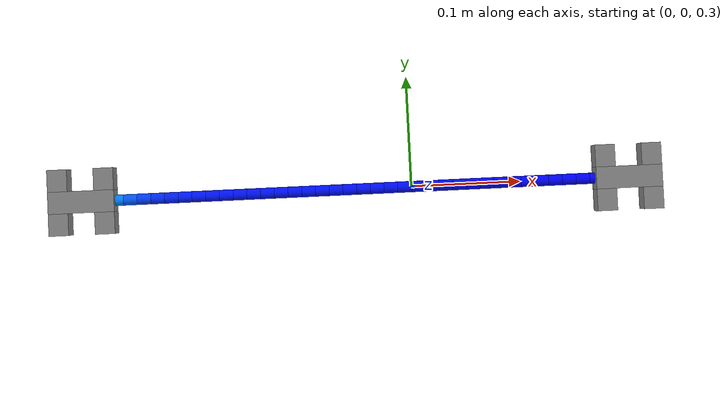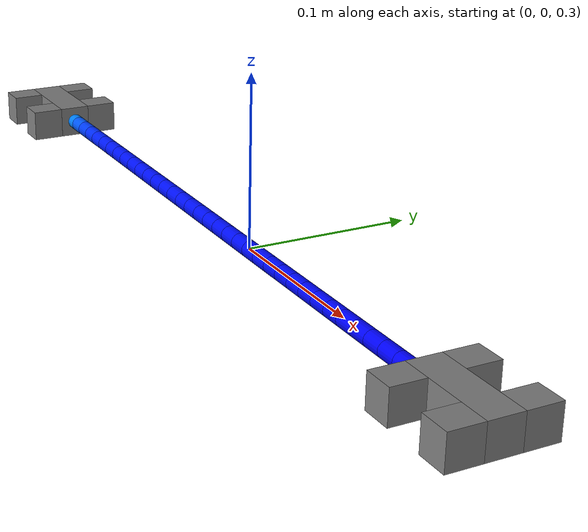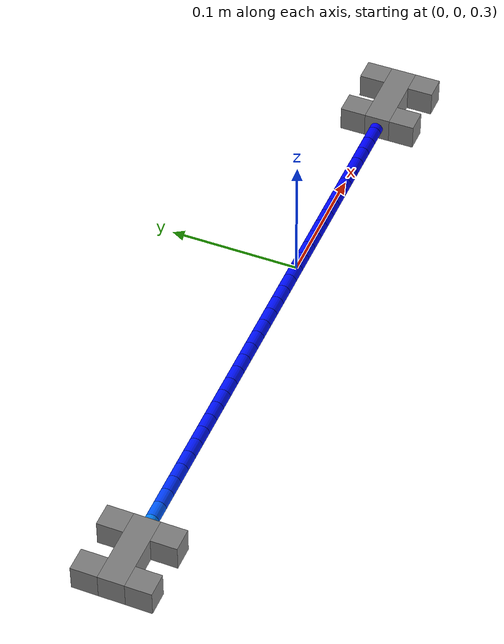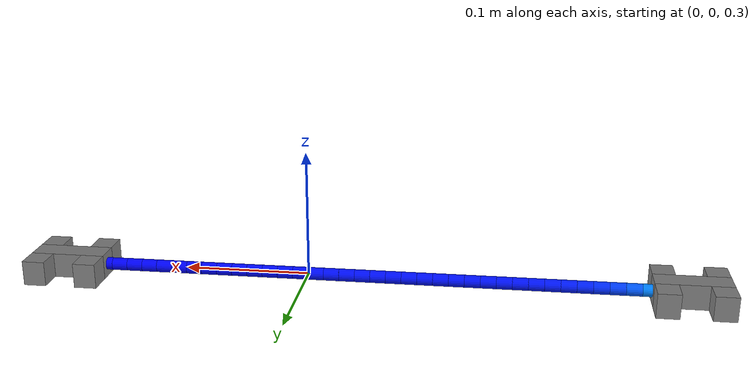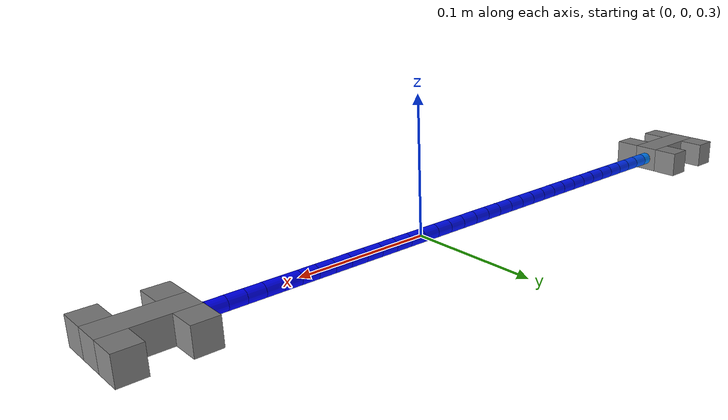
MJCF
<!--        &lt;!&ndash;Units are in Pa (SI)&ndash;&gt;-->

<mujoco model="Cable">
  <compiler angle="radian"/>
  <option impratio="5" gravity="0 0 0">
  </option>
  <size memory="200M"/>
  <statistic extent="1" center="0 0 0.3"/>
  <extension>
    <plugin plugin="mujoco.elasticity.cable">
      <instance name="composite">
        <config key="twist" value="2e4"/>
        <config key="bend" value="4e4"/>
        <config key="vmax" value="0.1"/>
      </instance>
    </plugin>
  </extension>
  <custom>
    <text name="composite_" data="rope_"/>
  </custom>
  <worldbody>
    <body name="slider1" pos="-0.3 0 0.3">
      <geom size="0.03 0.01 0.01" type="box" condim="3"/>
      <geom size="0.009 0.01 0.01" type="box" condim="3" pos="0.021 0.02 0"/>
      <geom size="0.009 0.01 0.01" type="box" condim="3" pos="-0.021 0.02 0"/>
      <geom size="0.009 0.01 0.01" type="box" condim="3" pos="0.021 -0.02 0"/>
      <geom size="0.009 0.01 0.01" type="box" condim="3" pos="-0.021 -0.02 0"/>
    </body>
    <body name="B_first" pos="-0.3 0 0.3">
      <joint name="J_first" pos="0 0 0" type="ball" group="3" damping="0.015"/>
      <geom name="G0" size="0.005 0.00625" pos="0.00625 0 0" quat="0.707107 0 -0.707107 0" type="capsule" condim="1" rgba="0 0.705783 1 1"/>
      <site name="S_first" pos="0 0 0" group="3"/>
      <plugin instance="composite"/>
      <body name="B_1" pos="0.0125 0 0">
        <joint name="J_1" pos="0 0 0" type="ball" group="3" damping="0.015"/>
        <geom name="G1" size="0.005 0.00625" pos="0.00625 0 0" quat="0.707107 0 -0.707107 0" type="capsule" condim="1" rgba="0 0.655989 1 1"/>
        <plugin instance="composite"/>
        <body name="B_2" pos="0.0125 0 0">
          <joint name="J_2" pos="0 0 0" type="ball" group="3" damping="0.015"/>
          <geom name="G2" size="0.005 0.00625" pos="0.00625 0 0" quat="0.707107 0 -0.707107 0" type="capsule" condim="1" rgba="0 0.512368 1 1"/>
          <plugin instance="composite"/>
          <body name="B_3" pos="0.0125 0 0">
            <joint name="J_3" pos="0 0 0" type="ball" group="3" damping="0.015"/>
            <geom name="G3" size="0.005 0.00625" pos="0.00625 0 0" quat="0.707107 0 -0.707107 0" type="capsule" condim="1" rgba="0 0.354071 1 1"/>
            <plugin instance="composite"/>
            <body name="B_4" pos="0.0125 0 0">
              <joint name="J_4" pos="0 0 0" type="ball" group="3" damping="0.015"/>
              <geom name="G4" size="0.005 0.00625" pos="0.00625 0 0" quat="0.707107 0 -0.707107 0" type="capsule" condim="1" rgba="0 0.247016 1 1"/>
              <plugin instance="composite"/>
              <body name="B_5" pos="0.0125 0 0">
                <joint name="J_5" pos="0 0 0" type="ball" group="3" damping="0.015"/>
                <geom name="G5" size="0.005 0.00625" pos="0.00625 0 0" quat="0.707107 0 -0.707107 0" type="capsule" condim="1" rgba="0 0.177048 1 1"/>
                <plugin instance="composite"/>
                <body name="B_6" pos="0.0125 0 0">
                  <joint name="J_6" pos="0 0 0" type="ball" group="3" damping="0.015"/>
                  <geom name="G6" size="0.005 0.00625" pos="0.00625 0 0" quat="0.707107 0 -0.707107 0" type="capsule" condim="1" rgba="0 0.132466 1 1"/>
                  <plugin instance="composite"/>
                  <body name="B_7" pos="0.0125 0 0">
                    <joint name="J_7" pos="0 0 0" type="ball" group="3" damping="0.015"/>
                    <geom name="G7" size="0.005 0.00625" pos="0.00625 0 0" quat="0.707107 0 -0.707107 0" type="capsule" condim="1" rgba="0 0.10475 1 1"/>
                    <plugin instance="composite"/>
                    <body name="B_8" pos="0.0125 0 0">
                      <joint name="J_8" pos="0 0 0" type="ball" group="3" damping="0.015"/>
                      <geom name="G8" size="0.005 0.00625" pos="0.00625 0 0" quat="0.707107 0 -0.707107 0" type="capsule" condim="1" rgba="0 0.0880006 1 1"/>
                      <plugin instance="composite"/>
                      <body name="B_9" pos="0.0125 0 0">
                        <joint name="J_9" pos="0 0 0" type="ball" group="3" damping="0.015"/>
                        <geom name="G9" size="0.005 0.00625" pos="0.00625 0 0" quat="0.707107 0 -0.707107 0" type="capsule" condim="1" rgba="0 0.0782314 1 1"/>
                        <plugin instance="composite"/>
                        <body name="B_10" pos="0.0125 0 0">
                          <joint name="J_10" pos="0 0 0" type="ball" group="3" damping="0.015"/>
                          <geom name="G10" size="0.005 0.00625" pos="0.00625 0 0" quat="0.707107 0 -0.707107 0" type="capsule" condim="1" rgba="0 0.0727861 1 1"/>
                          <plugin instance="composite"/>
                          <body name="B_11" pos="0.0125 0 0">
                            <joint name="J_11" pos="0 0 0" type="ball" group="3" damping="0.015"/>
                            <geom name="G11" size="0.005 0.00625" pos="0.00625 0 0" quat="0.707107 0 -0.707107 0" type="capsule" condim="1" rgba="0 0.0699149 1 1"/>
                            <plugin instance="composite"/>
                            <body name="B_12" pos="0.0125 0 0">
                              <joint name="J_12" pos="0 0 0" type="ball" group="3" damping="0.015"/>
                              <geom name="G12" size="0.005 0.00624999" pos="0.00624999 0 0" quat="0.707107 0 -0.707107 0" type="capsule" condim="1" rgba="0 0.0684785 1 1"/>
                              <plugin instance="composite"/>
                              <body name="B_13" pos="0.0125 0 0">
                                <joint name="J_13" pos="0 0 0" type="ball" group="3" damping="0.015"/>
                                <geom name="G13" size="0.005 0.00625" pos="0.00625 0 0" quat="0.707107 0 -0.707107 0" type="capsule" condim="1" rgba="0 0.0677457 1 1"/>
                                <plugin instance="composite"/>
                                <body name="B_14" pos="0.0125 0 0">
                                  <joint name="J_14" pos="0 0 0" type="ball" group="3" damping="0.015"/>
                                  <geom name="G14" size="0.005 0.00625" pos="0.00625 0 0" quat="0.707107 0 -0.707107 0" type="capsule" condim="1" rgba="0 0.0672557 1 1"/>
                                  <plugin instance="composite"/>
                                  <body name="B_15" pos="0.0125 0 0">
                                    <joint name="J_15" pos="0 0 0" type="ball" group="3" damping="0.015"/>
                                    <geom name="G15" size="0.005 0.00625" pos="0.00625 0 0" quat="0.707107 0 -0.707107 0" type="capsule" condim="1" rgba="0 0.0667259 1 1"/>
                                    <plugin instance="composite"/>
                                    <body name="B_16" pos="0.0125 0 0">
                                      <joint name="J_16" pos="0 0 0" type="ball" group="3" damping="0.015"/>
                                      <geom name="G16" size="0.005 0.00625" pos="0.00625 0 0" quat="0.707107 0 -0.707107 0" type="capsule" condim="1" rgba="0 0.0659899 1 1"/>
                                      <plugin instance="composite"/>
                                      <body name="B_17" pos="0.0125 0 0">
                                        <joint name="J_17" pos="0 0 0" type="ball" group="3" damping="0.015"/>
                                        <geom name="G17" size="0.005 0.00624999" pos="0.00624999 0 0" quat="0.707107 0 -0.707107 0" type="capsule" condim="1" rgba="0 0.0649561 1 1"/>
                                        <plugin instance="composite"/>
                                        <body name="B_18" pos="0.0125 0 0">
                                          <joint name="J_18" pos="0 0 0" type="ball" group="3" damping="0.015"/>
                                          <geom name="G18" size="0.005 0.00625" pos="0.00625 0 0" quat="0.707107 0 -0.707107 0" type="capsule" condim="1" rgba="0 0.0635808 1 1"/>
                                          <plugin instance="composite"/>
                                          <body name="B_19" pos="0.0125 0 0">
                                            <joint name="J_19" pos="0 0 0" type="ball" group="3" damping="0.015"/>
                                            <geom name="G19" size="0.005 0.00625" pos="0.00625 0 0" quat="0.707107 0 -0.707107 0" type="capsule" condim="1" rgba="0 0.0618502 1 1"/>
                                            <plugin instance="composite"/>
                                            <body name="B_20" pos="0.0125 0 0">
                                              <joint name="J_20" pos="0 0 0" type="ball" group="3" damping="0.015"/>
                                              <geom name="G20" size="0.005 0.00624999" pos="0.00624999 0 0" quat="0.707107 0 -0.707107 0" type="capsule" condim="1" rgba="0 0.0597683 1 1"/>
                                              <plugin instance="composite"/>
                                              <body name="B_21" pos="0.0125 0 0">
                                                <joint name="J_21" pos="0 0 0" type="ball" group="3" damping="0.015"/>
                                                <geom name="G21" size="0.005 0.00625001" pos="0.00625001 0 0" quat="0.707107 0 -0.707107 0" type="capsule" condim="1" rgba="0 0.0573504 1 1"/>
                                                <plugin instance="composite"/>
                                                <body name="B_22" pos="0.0125 0 0">
                                                  <joint name="J_22" pos="0 0 0" type="ball" group="3" damping="0.015"/>
                                                  <geom name="G22" size="0.005 0.00624999" pos="0.00624999 0 0" quat="0.707107 0 -0.707107 0" type="capsule" condim="1" rgba="0 0.0546176 1 1"/>
                                                  <plugin instance="composite"/>
                                                  <body name="B_23" pos="0.0125 0 0">
                                                    <joint name="J_23" pos="0 0 0" type="ball" group="3" damping="0.015"/>
                                                    <geom name="G23" size="0.005 0.00625001" pos="0.00625001 0 0" quat="0.707107 0 -0.707107 0" type="capsule" condim="1" rgba="0 0.0515946 1 1"/>
                                                    <plugin instance="composite"/>
                                                    <body name="B_24" pos="0.0125 0 0">
                                                      <joint name="J_24" pos="0 0 0" type="ball" group="3" damping="0.015"/>
                                                      <geom name="G24" size="0.005 0.00624999" pos="0.00624999 0 0" quat="0.707107 0 -0.707107 0" type="capsule" condim="1" rgba="0 0.0483087 1 1"/>
                                                      <plugin instance="composite"/>
                                                      <body name="B_25" pos="0.0125 0 0">
                                                        <joint name="J_25" pos="0 0 0" type="ball" group="3" damping="0.015"/>
                                                        <geom name="G25" size="0.005 0.00624999" pos="0.00624999 0 0" quat="0.707107 0 -0.707107 0" type="capsule" condim="1" rgba="0 0.0447891 1 1"/>
                                                        <plugin instance="composite"/>
                                                        <body name="B_26" pos="0.0125 0 0">
                                                          <joint name="J_26" pos="0 0 0" type="ball" group="3" damping="0.015"/>
                                                          <geom name="G26" size="0.005 0.00625001" pos="0.00625001 0 0" quat="0.707107 0 -0.707107 0" type="capsule" condim="1" rgba="0 0.0410685 1 1"/>
                                                          <plugin instance="composite"/>
                                                          <body name="B_27" pos="0.0125 0 0">
                                                            <joint name="J_27" pos="0 0 0" type="ball" group="3" damping="0.015"/>
                                                            <geom name="G27" size="0.005 0.00624999" pos="0.00624999 0 0" quat="0.707107 0 -0.707107 0" type="capsule" condim="1" rgba="0 0.0371831 1 1"/>
                                                            <plugin instance="composite"/>
                                                            <body name="B_28" pos="0.0125 0 0">
                                                              <joint name="J_28" pos="0 0 0" type="ball" group="3" damping="0.015"/>
                                                              <geom name="G28" size="0.005 0.00625001" pos="0.00625001 0 0" quat="0.707107 0 -0.707107 0" type="capsule" condim="1" rgba="0 0.033175 1 1"/>
                                                              <plugin instance="composite"/>
                                                              <body name="B_29" pos="0.0125 0 0">
                                                                <joint name="J_29" pos="0 0 0" type="ball" group="3" damping="0.015"/>
                                                                <geom name="G29" size="0.005 0.00624999" pos="0.00624999 0 0" quat="0.707107 0 -0.707107 0" type="capsule" condim="1" rgba="0 0.0290933 1 1"/>
                                                                <plugin instance="composite"/>
                                                                <body name="B_30" pos="0.0125 0 0">
                                                                  <joint name="J_30" pos="0 0 0" type="ball" group="3" damping="0.015"/>
                                                                  <geom name="G30" size="0.005 0.00624999" pos="0.00624999 0 0" quat="0.707107 0 -0.707107 0" type="capsule" condim="1" rgba="0 0.024995 1 1"/>
                                                                  <plugin instance="composite"/>
                                                                  <body name="B_31" pos="0.0125 0 0">
                                                                    <joint name="J_31" pos="0 0 0" type="ball" group="3" damping="0.015"/>
                                                                    <geom name="G31" size="0.005 0.00625001" pos="0.00625001 0 0" quat="0.707107 0 -0.707107 0" type="capsule" condim="1" rgba="0 0.0209467 1 1"/>
                                                                    <plugin instance="composite"/>
                                                                    <body name="B_32" pos="0.0125 0 0">
                                                                      <joint name="J_32" pos="0 0 0" type="ball" group="3" damping="0.015"/>
                                                                      <geom name="G32" size="0.005 0.00624999" pos="0.00624999 0 0" quat="0.707107 0 -0.707107 0" type="capsule" condim="1" rgba="0 0.0170235 1 1"/>
                                                                      <plugin instance="composite"/>
                                                                      <body name="B_33" pos="0.0125 0 0">
                                                                        <joint name="J_33" pos="0 0 0" type="ball" group="3" damping="0.015"/>
                                                                        <geom name="G33" size="0.005 0.00625001" pos="0.00625001 0 0" quat="0.707107 0 -0.707107 0" type="capsule" condim="1" rgba="0 0.0133084 1 1"/>
                                                                        <plugin instance="composite"/>
                                                                        <body name="B_34" pos="0.0125 0 0">
                                                                          <joint name="J_34" pos="0 0 0" type="ball" group="3" damping="0.015"/>
                                                                          <geom name="G34" size="0.005 0.00624999" pos="0.00624999 0 0" quat="0.707107 0 -0.707107 0" type="capsule" condim="1" rgba="0 0.00988954 1 1"/>
                                                                          <plugin instance="composite"/>
                                                                          <body name="B_35" pos="0.0125 0 0">
                                                                            <joint name="J_35" pos="0 0 0" type="ball" group="3" damping="0.015"/>
                                                                            <geom name="G35" size="0.005 0.00624999" pos="0.00624999 0 0" quat="0.707107 0 -0.707107 0" type="capsule" condim="1" rgba="0 0.00685654 1 1"/>
                                                                            <plugin instance="composite"/>
                                                                            <body name="B_36" pos="0.0125 0 0">
                                                                              <joint name="J_36" pos="0 0 0" type="ball" group="3" damping="0.015"/>
                                                                              <geom name="G36" size="0.005 0.00625001" pos="0.00625001 0 0" quat="0.707107 0 -0.707107 0" type="capsule" condim="1" rgba="0 0.00429628 1 1"/>
                                                                              <plugin instance="composite"/>
                                                                              <body name="B_37" pos="0.0125 0 0">
                                                                                <joint name="J_37" pos="0 0 0" type="ball" group="3" damping="0.015"/>
                                                                                <geom name="G37" size="0.005 0.00624999" pos="0.00624999 0 0" quat="0.707107 0 -0.707107 0" type="capsule" condim="1" rgba="0 0.00228791 1 1"/>
                                                                                <plugin instance="composite"/>
                                                                                <body name="B_38" pos="0.0125 0 0">
                                                                                  <joint name="J_38" pos="0 0 0" type="ball" group="3" damping="0.015"/>
                                                                                  <geom name="G38" size="0.005 0.00625001" pos="0.00625001 0 0" quat="0.707107 0 -0.707107 0" type="capsule" condim="1" rgba="0 0.000898957 1 1"/>
                                                                                  <plugin instance="composite"/>
                                                                                  <body name="B_last" pos="0.0125 0 0">
                                                                                    <joint name="J_last" pos="0 0 0" type="ball" group="3" damping="0.015"/>
                                                                                    <geom name="G39" size="0.005 0.00624999" pos="0.00624999 0 0" quat="0.707107 0 -0.707107 0" type="capsule" condim="1" rgba="0 0.000366955 1 1"/>
                                                                                    <site name="S_last" pos="0.0125 0 0" group="3"/>
                                                                                    <plugin instance="composite"/>
                                                                                    <body name="slider2" pos="0.01 0 0">
                                                                                      <geom size="0.03 0.01 0.01" type="box" condim="3"/>
                                                                                      <geom size="0.009 0.01 0.01" type="box" condim="3" pos="0.021 0.02 0"/>
                                                                                      <geom size="0.009 0.01 0.01" type="box" condim="3" pos="-0.021 0.02 0"/>
                                                                                      <geom size="0.009 0.01 0.01" type="box" condim="3" pos="0.021 -0.02 0"/>
                                                                                      <geom size="0.009 0.01 0.01" type="box" condim="3" pos="-0.021 -0.02 0"/>
                                                                                    </body>
                                                                                  </body>
                                                                                </body>
                                                                              </body>
                                                                            </body>
                                                                          </body>
                                                                        </body>
                                                                      </body>
                                                                    </body>
                                                                  </body>
                                                                </body>
                                                              </body>
                                                            </body>
                                                          </body>
                                                        </body>
                                                      </body>
                                                    </body>
                                                  </body>
                                                </body>
                                              </body>
                                            </body>
                                          </body>
                                        </body>
                                      </body>
                                    </body>
                                  </body>
                                </body>
                              </body>
                            </body>
                          </body>
                        </body>
                      </body>
                    </body>
                  </body>
                </body>
              </body>
            </body>
          </body>
        </body>
      </body>
    </body>
  </worldbody>
  <contact>
    <exclude body1="B_first" body2="slider1"/>
    <exclude body1="B_first" body2="B_1"/>
    <exclude body1="B_1" body2="B_2"/>
    <exclude body1="B_2" body2="B_3"/>
    <exclude body1="B_3" body2="B_4"/>
    <exclude body1="B_4" body2="B_5"/>
    <exclude body1="B_5" body2="B_6"/>
    <exclude body1="B_6" body2="B_7"/>
    <exclude body1="B_7" body2="B_8"/>
    <exclude body1="B_8" body2="B_9"/>
    <exclude body1="B_9" body2="B_10"/>
    <exclude body1="B_10" body2="B_11"/>
    <exclude body1="B_11" body2="B_12"/>
    <exclude body1="B_12" body2="B_13"/>
    <exclude body1="B_13" body2="B_14"/>
    <exclude body1="B_14" body2="B_15"/>
    <exclude body1="B_15" body2="B_16"/>
    <exclude body1="B_16" body2="B_17"/>
    <exclude body1="B_17" body2="B_18"/>
    <exclude body1="B_18" body2="B_19"/>
    <exclude body1="B_19" body2="B_20"/>
    <exclude body1="B_20" body2="B_21"/>
    <exclude body1="B_21" body2="B_22"/>
    <exclude body1="B_22" body2="B_23"/>
    <exclude body1="B_23" body2="B_24"/>
    <exclude body1="B_24" body2="B_25"/>
    <exclude body1="B_25" body2="B_26"/>
    <exclude body1="B_26" body2="B_27"/>
    <exclude body1="B_27" body2="B_28"/>
    <exclude body1="B_28" body2="B_29"/>
    <exclude body1="B_29" body2="B_30"/>
    <exclude body1="B_30" body2="B_31"/>
    <exclude body1="B_31" body2="B_32"/>
    <exclude body1="B_32" body2="B_33"/>
    <exclude body1="B_33" body2="B_34"/>
    <exclude body1="B_34" body2="B_35"/>
    <exclude body1="B_35" body2="B_36"/>
    <exclude body1="B_36" body2="B_37"/>
    <exclude body1="B_37" body2="B_38"/>
    <exclude body1="B_38" body2="B_last"/>
    <exclude body1="B_last" body2="slider2"/>
  </contact>
</mujoco>
